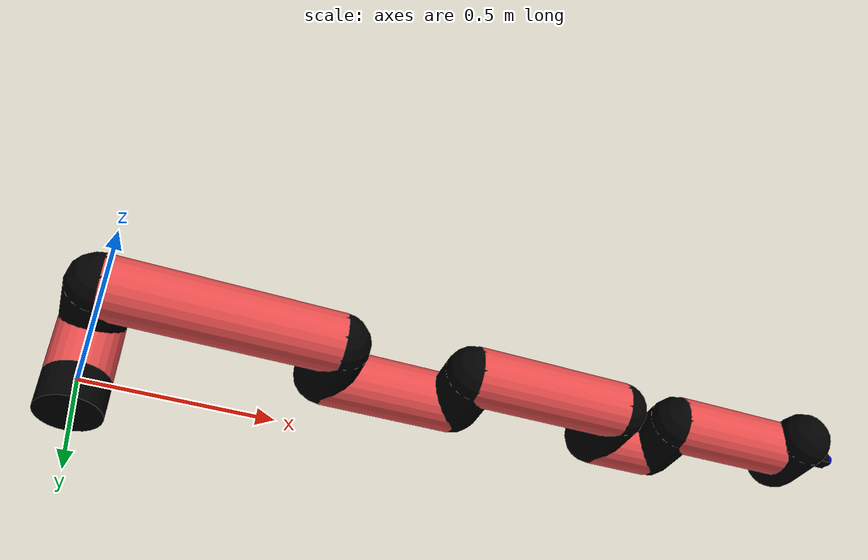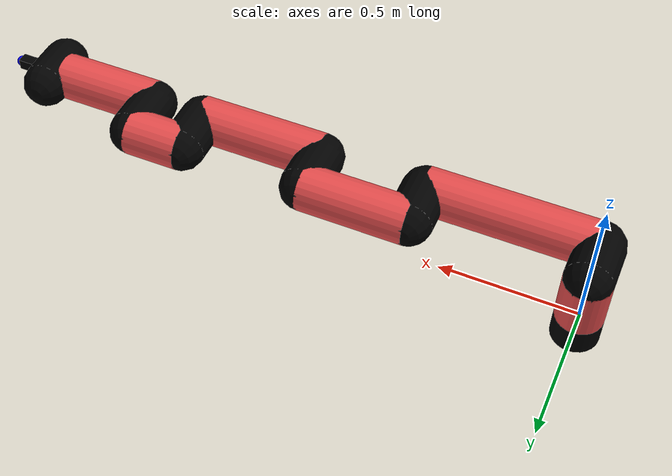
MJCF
<mujoco model="manipulator">
		<compiler angle="degree" coordinate="local" inertiafromgeom="auto" meshdir="meshes/"/>
		<option gravity="0 0 0" integrator="RK4" iterations="30" timestep="0.01"/>

		<default>
		<joint armature="1" limited="true" stiffness="10" damping="15" frictionloss="5.0"/>
		<geom conaffinity="1" condim="3" contype="1" friction=".5 .1 .1" margin="0.002"/>
		<motor ctrllimited="true"/>
		<position ctrllimited="true"/>
		</default>

		<asset>
		<texture builtin="gradient" height="100" rgb1="1.0 1.0 1.0" rgb2="1.0 1.0 1.0" type="skybox" width="100"/>
		<texture builtin="flat" height="32" name="arm_tex" rgb1="0.9 0.3 0.3" type="2d" width="32"/>
		<texture builtin="flat" height="32" name="gripper_tex" rgb1="0.0 0.0 0.0" type="cube" width="32"/>

		<material name="arm_mat" shininess="0.1" specular="0.1" texture="arm_tex"/>
		<material name="gripper_mat" shininess="1" specular="1" texture="gripper_tex"/>
		</asset>

		<worldbody>
		<light cutoff="45" diffuse=".8 .8 .8" dir="0 0.16 -1" directional="false" name="light" pos="0 -2.0 8.0" specular="0.3 0.3 0.3"/>

		<body name="base_link" pos="0 0 -0.1">
		<geom fromto="0 0 0 0 0 0.1" material="arm_mat" name="base_link" rgba="0.0 0.0 0.0 1" size="0.085" type="cylinder"/>
		</body>

		<body name="l1" pos="0 0 0">
<geom fromto="0 0 0 0 0 0.18" material="arm_mat" name="l1" rgba="0.9 0.3 0.3 1" size="0.085" type="cylinder"/>
<geom fromto="0 0 0.18 0 -0.16 0.18" material="arm_mat" name="l1_ex" rgba="0.0 0.0 0.0 1" size="0.085" type="capsule"/>
<joint axis="0 0 1" name="j1" pos="0 0 0" range="-90 90" damping="39.58" frictionloss="14.6"/>

<body name="l2" pos="0 -0.16 0.18">
<geom fromto="0 0 0 0.62 0 0" material="arm_mat" name="l2" rgba="0.9 0.3 0.3 1" size="0.085" type="cylinder"/>
<geom fromto="0.62 0 0 0.62 0.16 0" material="arm_mat" name="l2_ex" rgba="0.0 0.0 0.0 1" size="0.085" type="capsule"/>
<joint axis="0.0 1.0 0.0" name="j2" pos="0 0 0" range="-90 60" damping="42.56" frictionloss="8.46"/>

<body name="l3" pos="0.62 0.16 0">
<geom fromto="0 0 0 0.39 0 0" material="arm_mat" name="l3" rgba="0.9 0.3 0.3 1" size="0.085" type="cylinder"/>
<geom fromto="0.39 0 0 0.39 -0.16 0" material="arm_mat" name="l3_ex" rgba="0.0 0.0 0.0 1" size="0.085" type="capsule"/>
<joint axis="0.0 1.0 0.0" name="j3" pos="0 0 0" range="-30 60" damping="33.4" frictionloss="14.28"/>

<body name="l4" pos="0.39 -0.16 0">
<geom fromto="0 0 0 0.47 0 0" material="arm_mat" name="l4" rgba="0.9 0.3 0.3 1" size="0.085" type="cylinder"/>
<geom fromto="0.47 0 0 0.47 0.16 0" material="arm_mat" name="l4_ex" rgba="0.0 0.0 0.0 1" size="0.085" type="capsule"/>
<joint axis="0.0 1.0 0.0" name="j4" pos="0 0 0" range="-30 60" damping="32.56" frictionloss="6.12"/>

<body name="l5" pos="0.47 0.16 0">
<geom fromto="0 0 0 0.2 0 0" material="arm_mat" name="l5" rgba="0.9 0.3 0.3 1" size="0.085" type="cylinder"/>
<geom fromto="0.2 0 0 0.2 -0.16 0" material="arm_mat" name="l5_ex" rgba="0.0 0.0 0.0 1" size="0.085" type="capsule"/>
<joint axis="0.0 1.0 0.0" name="j5" pos="0 0 0" range="-30 60" damping="32.5" frictionloss="13.09"/>

<body name="l6" pos="0.2 -0.16 0">
<geom fromto="0 0 0 0.37 0 0" material="arm_mat" name="l6" rgba="0.9 0.3 0.3 1" size="0.085" type="cylinder"/>
<joint axis="0.0 1.0 0.0" name="j6" pos="0 0 0" range="-30 60" damping="37.82" frictionloss="8.18"/>

<body name="gripper" pos="0.37 0 0">
<geom fromto="0.05 -0.07 0 0.05 0.07 0" material="gripper_mat" name="gripper" rgba="0.0 0.0 0.0 1" size="0.085" type="capsule"/><joint axis="1 0 0" name="j7" pos="0 0 0" range="-90 90" damping="15" frictionloss="5.0"/><body name="finger" pos="0.1 0 0">
<geom fromto="0 0.0 0 0.1 0.0 0" material="gripper_mat" name="finger" rgba="0.0 0.0 0.0 1" size="0.020 0.06 0.06" type="box"/>
</body>
<site name="current" pos="0.2 0. 0.0" rgba="0. 0. 1.0 1" size="0.02" type="sphere"/>
</body>
</body>
</body>
</body>
</body>
</body>
</body>
</worldbody>
<actuator>
<motor ctrllimited="true" ctrlrange="-1.0 1.0" joint="j1" gear="61.93"/>
<motor ctrllimited="true" ctrlrange="-1.0 1.0" joint="j2" gear="99.32"/>
<motor ctrllimited="true" ctrlrange="-1.0 1.0" joint="j3" gear="118.07"/>
<motor ctrllimited="true" ctrlrange="-1.0 1.0" joint="j4" gear="56.06"/>
<motor ctrllimited="true" ctrlrange="-1.0 1.0" joint="j5" gear="37.0"/>
<motor ctrllimited="true" ctrlrange="-1.0 1.0" joint="j6" gear="81.45"/>
<motor ctrllimited="true" ctrlrange="-1.0 1.0" joint="j7" gear="80"/>
</actuator>
</mujoco>
